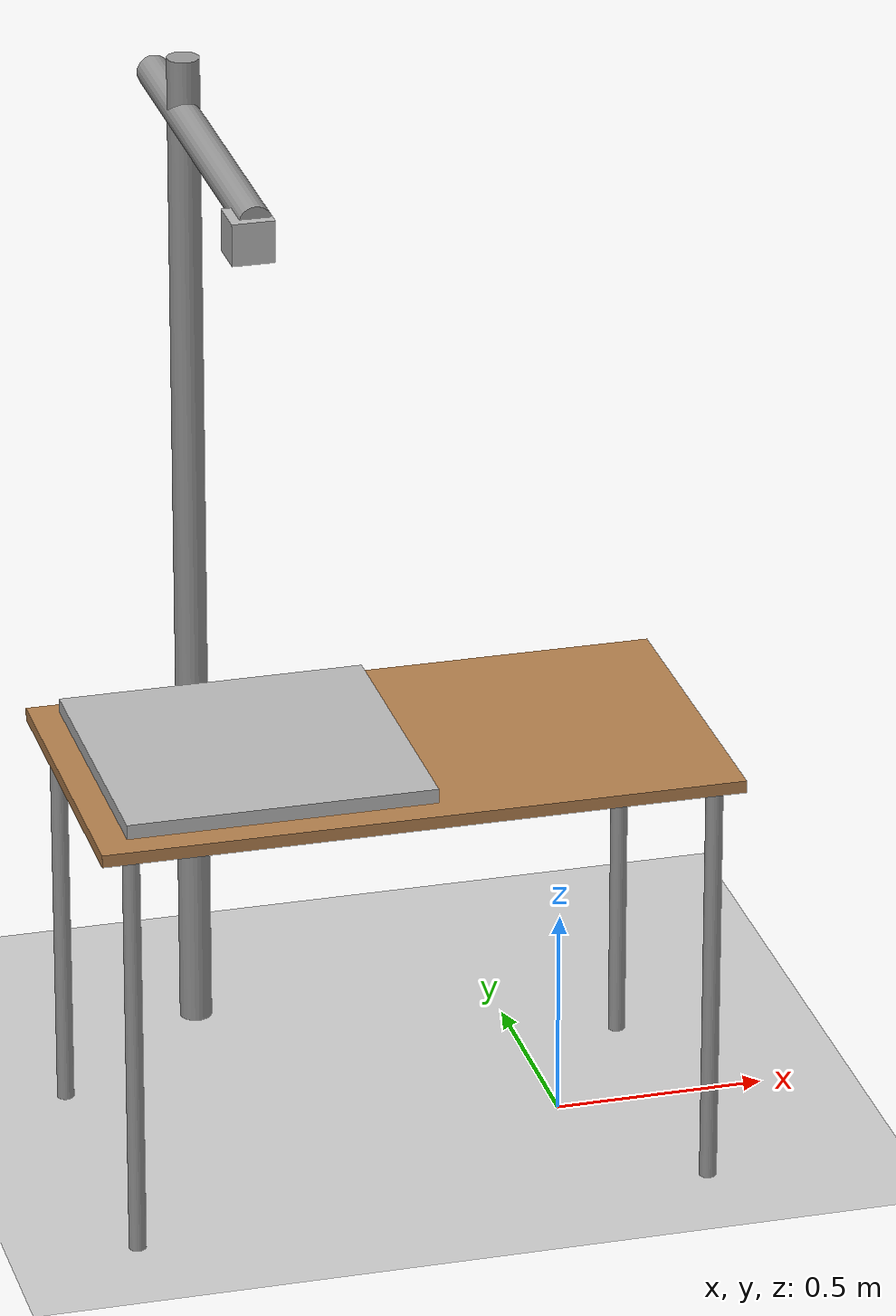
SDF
<sdf version="1.6">
 <world name="default">
  <light name="sun" type="directional">
   <pose>0 0 10 0 -0 0</pose>
   <diffuse>0.8 0.8 0.8 1</diffuse>
   <specular>0.2 0.2 0.2 1</specular>
   <attenuation>
    <range>1000</range>
    <constant>0.9</constant>
    <linear>0.01</linear>
    <quadratic>0.001</quadratic>
   </attenuation>
   <direction>-0.5 0.1 -0.9</direction>
  </light>
  <model name="ground_plane">
   <static>1</static>
   <link name="link">
    <collision name="collision">
     <geometry><plane><normal>0 0 1</normal><size>100 100</size></plane></geometry>
     <surface>
      <contact><collide_bitmask>65535</collide_bitmask></contact>
      <friction><ode><mu>100</mu><mu2>50</mu2></ode></friction>
     </surface>
    </collision>
    <visual name="visual">
     <cast_shadows>0</cast_shadows>
     <geometry><plane><normal>0 0 1</normal><size>100 100</size></plane></geometry>
     <material>
      <script><uri>file://media/materials/scripts/gazebo.material</uri><name>Gazebo/Grey</name></script>
     </material>
    </visual>
   </link>
  </model>
  <gravity>0 0 -9.8</gravity>
  <magnetic_field>6e-06 2.3e-05 -4.2e-05</magnetic_field>
  <atmosphere type="adiabatic"/>
  <physics name="default_physics" default="0" type="ode">
   <max_step_size>0.001</max_step_size>
   <real_time_factor>1</real_time_factor>
   <real_time_update_rate>1000</real_time_update_rate>
  </physics>
  <scene><ambient>0.4 0.4 0.4 1</ambient><background>0.7 0.7 0.7 1</background><shadows>1</shadows></scene>
  <audio><device>default</device></audio>
  <spherical_coordinates>
   <surface_model>EARTH_WGS84</surface_model>
   <latitude_deg>0</latitude_deg>
   <longitude_deg>0</longitude_deg>
   <elevation>0</elevation>
   <heading_deg>0</heading_deg>
  </spherical_coordinates>
  <model name="table">
   <static>1</static>
   <link name="link">
    <collision name="surface">
     <pose>0 0 1 0 -0 0</pose>
     <geometry><box><size>1.5 0.8 0.03</size></box></geometry>
     <surface><friction><ode><mu>0.6</mu><mu2>0.6</mu2></ode></friction></surface>
    </collision>
    <visual name="visual1">
     <pose>0 0 1 0 -0 0</pose>
     <geometry><box><size>1.5 0.8 0.03</size></box></geometry>
     <material>
      <script><uri>file://media/materials/scripts/gazebo.material</uri><name>Gazebo/Wood</name></script>
     </material>
    </visual>
    <collision name="front_left_leg">
     <pose>0.68 0.38 0.5 0 -0 0</pose>
     <geometry><cylinder><radius>0.02</radius><length>1</length></cylinder></geometry>
    </collision>
    <visual name="front_left_leg">
     <pose>0.68 0.38 0.5 0 -0 0</pose>
     <geometry><cylinder><radius>0.02</radius><length>1</length></cylinder></geometry>
     <material>
      <script><uri>file://media/materials/scripts/gazebo.material</uri><name>Gazebo/Grey</name></script>
     </material>
    </visual>
    <collision name="front_right_leg">
     <pose>0.68 -0.38 0.5 0 -0 0</pose>
     <geometry><cylinder><radius>0.02</radius><length>1</length></cylinder></geometry>
    </collision>
    <visual name="front_right_leg">
     <pose>0.68 -0.38 0.5 0 -0 0</pose>
     <geometry><cylinder><radius>0.02</radius><length>1</length></cylinder></geometry>
     <material>
      <script><uri>file://media/materials/scripts/gazebo.material</uri><name>Gazebo/Grey</name></script>
     </material>
    </visual>
    <collision name="back_right_leg">
     <pose>-0.68 -0.38 0.5 0 -0 0</pose>
     <geometry><cylinder><radius>0.02</radius><length>1</length></cylinder></geometry>
    </collision>
    <visual name="back_right_leg">
     <pose>-0.68 -0.38 0.5 0 -0 0</pose>
     <geometry><cylinder><radius>0.02</radius><length>1</length></cylinder></geometry>
     <material>
      <script><uri>file://media/materials/scripts/gazebo.material</uri><name>Gazebo/Grey</name></script>
     </material>
    </visual>
    <collision name="back_left_leg">
     <pose>-0.68 0.38 0.5 0 -0 0</pose>
     <geometry><cylinder><radius>0.02</radius><length>1</length></cylinder></geometry>
    </collision>
    <visual name="back_left_leg">
     <pose>-0.68 0.38 0.5 0 -0 0</pose>
     <geometry><cylinder><radius>0.02</radius><length>1</length></cylinder></geometry>
     <material>
      <script><uri>file://media/materials/scripts/gazebo.material</uri><name>Gazebo/Grey</name></script>
     </material>
    </visual>
   </link>
   <pose>-0.433721 -0.027332 0 0 -0 0</pose>
  </model>
  <model name="white_plane">
   <link name="link">
    <inertial>
     <mass>1</mass>
     <inertia>
      <ixx>0.166667</ixx>
      <ixy>0</ixy>
      <ixz>0</ixz>
      <iyy>0.166667</iyy>
      <iyz>0</iyz>
      <izz>0.166667</izz>
     </inertia>
    </inertial>
    <visual name="visual">
     <geometry><box><size>0.722166 0.690238 0.034696</size></box></geometry>
     <material name="white"/>
    </visual>
    <collision name="collision">
     <geometry><box><size>0.722166 0.690238 0.034696</size></box></geometry>
     <surface>
      <friction>
       <ode><mu>1</mu><mu2>1</mu2><fdir1>0 0 0</fdir1><slip1>0</slip1><slip2>0</slip2></ode>
       <torsional>
        <coefficient>1</coefficient>
        <patch_radius>0</patch_radius>
        <surface_radius>0</surface_radius>
        <use_patch_radius>1</use_patch_radius>
        <ode><slip>0</slip></ode>
       </torsional>
      </friction>
      <bounce><restitution_coefficient>0</restitution_coefficient><threshold>1e+06</threshold></bounce>
      <contact>
       <collide_without_contact>0</collide_without_contact>
       <collide_without_contact_bitmask>1</collide_without_contact_bitmask>
       <collide_bitmask>1</collide_bitmask>
       <ode>
        <soft_cfm>0</soft_cfm>
        <soft_erp>0.2</soft_erp>
        <kp>1e+13</kp>
        <kd>1</kd>
        <max_vel>0.01</max_vel>
        <min_depth>0</min_depth>
       </ode>
       <bullet>
        <split_impulse>1</split_impulse>
        <split_impulse_penetration_threshold>-0.01</split_impulse_penetration_threshold>
        <soft_cfm>0</soft_cfm>
        <soft_erp>0.2</soft_erp>
        <kp>1e+13</kp>
        <kd>1</kd>
       </bullet>
      </contact>
     </surface>
    </collision>
   </link>
   <static>1</static>
   <pose>-0.752697 -0.019956 1.03488 -3.7e-05 2e-06 0.002815</pose>
  </model>
  <model name="camera_pole">
   <link name="link">
    <inertial>
     <mass>0.0142937</mass>
     <inertia>
      <ixx>0.00723726</ixx>
      <ixy>0</ixy>
      <ixz>0</ixz>
      <iyy>0.00723726</iyy>
      <iyz>0</iyz>
      <izz>1.05574e-05</izz>
     </inertia>
    </inertial>
    <pose>-0.261375 0 0.727699 0 -0 0</pose>
    <visual name="visual">
     <geometry><cylinder><radius>0.0384346</radius><length>2.46404</length></cylinder></geometry>
     <material>
      <script><name>Gazebo/Grey</name><uri>file://media/materials/scripts/gazebo.material</uri></script>
     </material>
    </visual>
    <collision name="collision">
     <geometry><cylinder><radius>0.038435</radius><length>2.46404</length></cylinder></geometry>
     <surface>
      <friction>
       <ode><mu>1</mu><mu2>1</mu2><fdir1>0 0 0</fdir1><slip1>0</slip1><slip2>0</slip2></ode>
       <torsional>
        <coefficient>1</coefficient>
        <patch_radius>0</patch_radius>
        <surface_radius>0</surface_radius>
        <use_patch_radius>1</use_patch_radius>
        <ode><slip>0</slip></ode>
       </torsional>
      </friction>
      <bounce><restitution_coefficient>0</restitution_coefficient><threshold>1e+06</threshold></bounce>
      <contact>
       <collide_without_contact>0</collide_without_contact>
       <collide_without_contact_bitmask>1</collide_without_contact_bitmask>
       <collide_bitmask>1</collide_bitmask>
       <ode>
        <soft_cfm>0</soft_cfm>
        <soft_erp>0.2</soft_erp>
        <kp>1e+13</kp>
        <kd>1</kd>
        <max_vel>0.01</max_vel>
        <min_depth>0</min_depth>
       </ode>
       <bullet>
        <split_impulse>1</split_impulse>
        <split_impulse_penetration_threshold>-0.01</split_impulse_penetration_threshold>
        <soft_cfm>0</soft_cfm>
        <soft_erp>0.2</soft_erp>
        <kp>1e+13</kp>
        <kd>1</kd>
       </bullet>
      </contact>
     </surface>
    </collision>
   </link>
   <link name="link_0">
    <inertial>
     <mass>0.00633949</mass>
     <inertia>
      <ixx>0.000530804</ixx>
      <ixy>0</ixy>
      <ixz>0</ixz>
      <iyy>0.000530804</iyy>
      <iyz>0</iyz>
      <izz>5.02659e-06</izz>
     </inertia>
    </inertial>
    <pose>-0.263529 -0.204376 1.81994 1.5708 -0 0</pose>
    <visual name="visual">
     <geometry><cylinder><radius>0.0398221</radius><length>1</length></cylinder></geometry>
     <material>
      <lighting>1</lighting>
      <script><uri>file://media/materials/scripts/gazebo.material</uri><name>Gazebo/Grey</name></script>
     </material>
    </visual>
    <collision name="collision">
     <geometry><cylinder><radius>0.039822</radius><length>1</length></cylinder></geometry>
     <surface>
      <friction>
       <ode><mu>1</mu><mu2>1</mu2><fdir1>0 0 0</fdir1><slip1>0</slip1><slip2>0</slip2></ode>
       <torsional>
        <coefficient>1</coefficient>
        <patch_radius>0</patch_radius>
        <surface_radius>0</surface_radius>
        <use_patch_radius>1</use_patch_radius>
        <ode><slip>0</slip></ode>
       </torsional>
      </friction>
      <bounce><restitution_coefficient>0</restitution_coefficient><threshold>1e+06</threshold></bounce>
      <contact>
       <collide_without_contact>0</collide_without_contact>
       <collide_without_contact_bitmask>1</collide_without_contact_bitmask>
       <collide_bitmask>1</collide_bitmask>
       <ode>
        <soft_cfm>0</soft_cfm>
        <soft_erp>0.2</soft_erp>
        <kp>1e+13</kp>
        <kd>1</kd>
        <max_vel>0.01</max_vel>
        <min_depth>0</min_depth>
       </ode>
       <bullet>
        <split_impulse>1</split_impulse>
        <split_impulse_penetration_threshold>-0.01</split_impulse_penetration_threshold>
        <soft_cfm>0</soft_cfm>
        <soft_erp>0.2</soft_erp>
        <kp>1e+13</kp>
        <kd>1</kd>
       </bullet>
      </contact>
     </surface>
    </collision>
   </link>
   <static>1</static>
   <pose>-0.454487 0.691599 0.5 0 -0 0</pose>
  </model>
  <model name="camera">
   <link name="camera_link">
    <sensor type="camera" name="camera1">
     <update_rate>30</update_rate>
     <visualize>true</visualize>
     <camera name="head">
      <horizontal_fov>1.3962634</horizontal_fov>
      <image><width>800</width><height>800</height><format>R8G8B8</format></image>
      <clip><near>0.02</near><far>300</far></clip>
      <noise><type>gaussian</type><mean>0.0</mean><stddev>0.007</stddev></noise>
     </camera>
     <plugin name="camera_controller" filename="libgazebo_ros_camera.so">
      <alwaysOn>true</alwaysOn>
      <updateRate>0.0</updateRate>
      <cameraName>edo/camera</cameraName>
      <imageTopicName>image_raw</imageTopicName>
      <cameraInfoTopicName>camera_info</cameraInfoTopicName>
      <frameName>camera_link</frameName>
      <hackBaseline>0.07</hackBaseline>
      <distortionK1>0.0</distortionK1>
      <distortionK2>0.0</distortionK2>
      <distortionK3>0.0</distortionK3>
      <distortionT1>0.0</distortionT1>
      <distortionT2>0.0</distortionT2>
     </plugin>
    </sensor>
    <inertial>
     <mass>0.1</mass>
     <inertia>
      <ixx>0.000166667</ixx>
      <iyy>0.000166667</iyy>
      <izz>0.000166667</izz>
      <ixy>0</ixy>
      <ixz>0</ixz>
      <iyz>0</iyz>
     </inertia>
    </inertial>
    <visual name="visual"><geometry><box><size>0.1 0.1 0.1</size></box></geometry></visual>
    <collision name="collision">
     <geometry><box><size>0.1 0.1 0.1</size></box></geometry>
     <surface>
      <friction>
       <ode><mu>1</mu><mu2>1</mu2><fdir1>0 0 0</fdir1><slip1>0</slip1><slip2>0</slip2></ode>
       <torsional>
        <coefficient>1</coefficient>
        <patch_radius>0</patch_radius>
        <surface_radius>0</surface_radius>
        <use_patch_radius>1</use_patch_radius>
        <ode><slip>0</slip></ode>
       </torsional>
      </friction>
      <bounce><restitution_coefficient>0</restitution_coefficient><threshold>1e+06</threshold></bounce>
      <contact>
       <collide_without_contact>0</collide_without_contact>
       <collide_without_contact_bitmask>1</collide_without_contact_bitmask>
       <collide_bitmask>1</collide_bitmask>
       <ode>
        <soft_cfm>0</soft_cfm>
        <soft_erp>0.2</soft_erp>
        <kp>1e+13</kp>
        <kd>1</kd>
        <max_vel>0.01</max_vel>
        <min_depth>0</min_depth>
       </ode>
       <bullet>
        <split_impulse>1</split_impulse>
        <split_impulse_penetration_threshold>-0.01</split_impulse_penetration_threshold>
        <soft_cfm>0</soft_cfm>
        <soft_erp>0.2</soft_erp>
        <kp>1e+13</kp>
        <kd>1</kd>
       </bullet>
      </contact>
     </surface>
    </collision>
   </link>
   <static>1</static>
   <pose>-0.728969 0.01318 2.2823 3.14159 1.57079 3.14159</pose>
  </model>
 </world>
</sdf>
